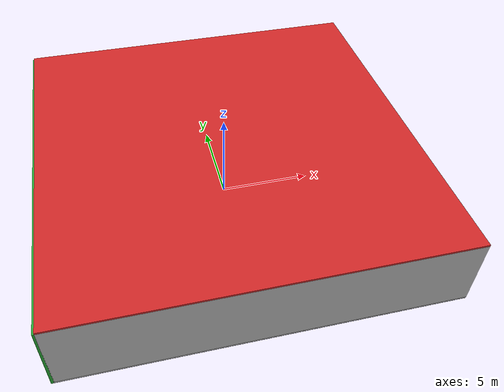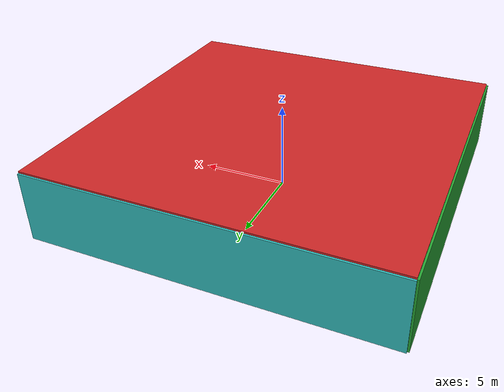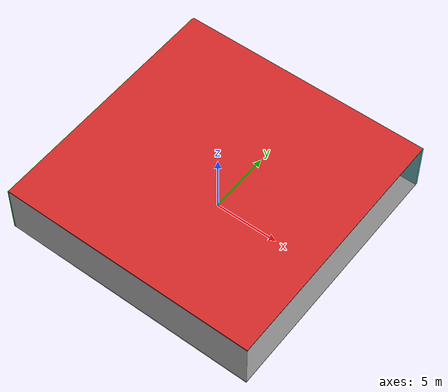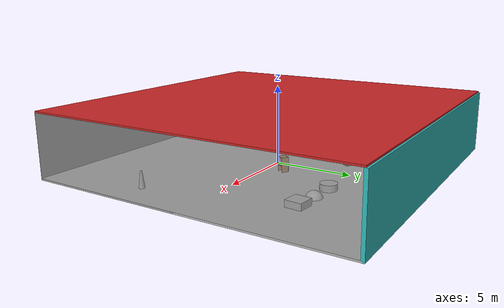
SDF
<sdf version="1.4">
 <world name="default">
  <physics type="ode">
   <max_step_size>0.001</max_step_size>
   <real_time_factor>1</real_time_factor>
   <real_time_update_rate>1000</real_time_update_rate>
   <gravity>0 0 -9.8</gravity>
  </physics>
  <scene><ambient>0.4 0.4 0.4 1</ambient><background>0.7 0.7 0.7 1</background><shadows>1</shadows></scene>
  <model name="Surrounding">
   <static>1</static>
   <link name="Ceiling">
    <collision name="Ceiling_Collision"><geometry><box><size>20 20 0.1</size></box></geometry></collision>
    <visual name="Ceiling_Visual">
     <geometry><box><size>20 20 0.1</size></box></geometry>
     <material>
      <script><uri>file://media/materials/scripts/gazebo.material</uri><name>Gazebo/RedBright</name></script>
     </material>
    </visual>
    <pose>0 0 4.05 0 0 0</pose>
   </link>
   <link name="Wall_South">
    <collision name="Wall_South_Collision">
     <geometry><box><size>20 0 4</size></box></geometry>
     <pose>0 0 2 0 -0 0</pose>
    </collision>
    <visual name="Wall_South_Visual">
     <pose>0 0 2 0 -0 0</pose>
     <geometry><box><size>20 0 4</size></box></geometry>
     <material>
      <script><uri>file://media/materials/scripts/gazebo.material</uri><name>Gazebo/Pioneer2Body</name></script>
     </material>
    </visual>
    <velocity_decay><linear>0</linear><angular>0</angular></velocity_decay>
    <pose>0 -10 0 0 -0 0</pose>
   </link>
   <link name="Wall_East">
    <collision name="Wall_21_Collision">
     <geometry><box><size>20 0 4</size></box></geometry>
     <pose>0 0 2 0 -0 0</pose>
    </collision>
    <visual name="Wall_21_Visual">
     <pose>0 0 2 0 -0 0</pose>
     <geometry><box><size>20 0 4</size></box></geometry>
     <material>
      <script><uri>file://media/materials/scripts/gazebo.material</uri><name>Gazebo/GreyTransparent</name></script>
     </material>
    </visual>
    <velocity_decay><linear>0</linear><angular>0</angular></velocity_decay>
    <pose>10 0 0 0 -0 1.5708</pose>
   </link>
   <link name="Wall_North">
    <collision name="Wall_22_Collision">
     <geometry><box><size>20 0.2 4</size></box></geometry>
     <pose>0 0 2 0 -0 0</pose>
    </collision>
    <visual name="Wall_22_Visual">
     <pose>0 0 2 0 -0 0</pose>
     <geometry><box><size>20 0.2 4</size></box></geometry>
     <material>
      <script><uri>file://media/materials/scripts/gazebo.material</uri><name>Gazebo/Turquoise</name></script>
     </material>
    </visual>
    <velocity_decay><linear>0</linear><angular>0</angular></velocity_decay>
    <pose>0 10 0 0 -0 0</pose>
   </link>
   <link name="Wall_West">
    <collision name="Wall_23_Collision">
     <geometry><box><size>20 0.2 4</size></box></geometry>
     <pose>0 0 2 0 -0 0</pose>
    </collision>
    <visual name="Wall_23_Visual">
     <pose>0 0 2 0 -0 0</pose>
     <geometry><box><size>20 0.2 4</size></box></geometry>
     <material>
      <script><uri>file://media/materials/scripts/gazebo.material</uri><name>Gazebo/GreenGlow</name></script>
     </material>
    </visual>
    <velocity_decay><linear>0</linear><angular>0</angular></velocity_decay>
    <pose>-10 0 0 0 0 -1.5708</pose>
   </link>
   <link name="Ground_link">
    <collision name="collision">
     <pose>0 0 .05 0 -0 0</pose>
     <geometry><box><size>20 20 0.1</size></box></geometry>
    </collision>
    <visual name="visual">
     <pose>0 0 .05 0 -0 0</pose>
     <geometry><box><size>20 20 0.1</size></box></geometry>
     <material>
      <script><uri>file://media/materials/scripts/gazebo.material</uri><name>Gazebo/PioneerBody</name></script>
     </material>
    </visual>
   </link>
   <static>1</static>
  </model>
  <spherical_coordinates>
   <surface_model>EARTH_WGS84</surface_model>
   <latitude_deg>0</latitude_deg>
   <longitude_deg>0</longitude_deg>
   <elevation>0</elevation>
   <heading_deg>0</heading_deg>
  </spherical_coordinates>
  <light name="lightball_0" type="diffuse">
   <diffuse>0.8 0.8 0.8 1</diffuse>
   <specular>0.2 0.2 0.2 1</specular>
   <attenuation>
    <range>100</range>
    <constant>0.7</constant>
    <linear>0.01</linear>
    <quadratic>0.001</quadratic>
   </attenuation>
   <direction>-0.5 0.1 -0.9</direction>
   <pose>-9.09081198554 2.10433356481 1.97257265001 0 0 0</pose>
  </light>
  <light name="lightball_1" type="diffuse">
   <diffuse>0.8 0.8 0.8 1</diffuse>
   <specular>0.2 0.2 0.2 1</specular>
   <attenuation>
    <range>100</range>
    <constant>0.7</constant>
    <linear>0.01</linear>
    <quadratic>0.001</quadratic>
   </attenuation>
   <direction>-0.5 0.1 -0.9</direction>
   <pose>6.51391578842 4.21852524279 3.79405675092 0 0 0</pose>
  </light>
  <light name="lightball_2" type="diffuse">
   <diffuse>0.8 0.8 0.8 1</diffuse>
   <specular>0.2 0.2 0.2 1</specular>
   <attenuation>
    <range>100</range>
    <constant>0.7</constant>
    <linear>0.01</linear>
    <quadratic>0.001</quadratic>
   </attenuation>
   <direction>-0.5 0.1 -0.9</direction>
   <pose>8.00557733855 5.34960505231 0.918950887155 0 0 0</pose>
  </light>
  <light name="lightball_3" type="diffuse">
   <diffuse>0.8 0.8 0.8 1</diffuse>
   <specular>0.2 0.2 0.2 1</specular>
   <attenuation>
    <range>100</range>
    <constant>0.7</constant>
    <linear>0.01</linear>
    <quadratic>0.001</quadratic>
   </attenuation>
   <direction>-0.5 0.1 -0.9</direction>
   <pose>1.57577348259 5.38142864152 0.66597867011 0 0 0</pose>
  </light>
  <light name="lightball_4" type="diffuse">
   <diffuse>0.8 0.8 0.8 1</diffuse>
   <specular>0.2 0.2 0.2 1</specular>
   <attenuation>
    <range>100</range>
    <constant>0.7</constant>
    <linear>0.01</linear>
    <quadratic>0.001</quadratic>
   </attenuation>
   <direction>-0.5 0.1 -0.9</direction>
   <pose>-6.35379121975 -8.12906288547 2.21015218962 0 0 0</pose>
  </light>
  <light name="lightball_5" type="diffuse">
   <diffuse>0.8 0.8 0.8 1</diffuse>
   <specular>0.2 0.2 0.2 1</specular>
   <attenuation>
    <range>100</range>
    <constant>0.7</constant>
    <linear>0.01</linear>
    <quadratic>0.001</quadratic>
   </attenuation>
   <direction>-0.5 0.1 -0.9</direction>
   <pose>2.11646620824 -6.14294838929 1.82936666213 0 0 0</pose>
  </light>
  <light name="lightball_6" type="diffuse">
   <diffuse>0.8 0.8 0.8 1</diffuse>
   <specular>0.2 0.2 0.2 1</specular>
   <attenuation>
    <range>100</range>
    <constant>0.7</constant>
    <linear>0.01</linear>
    <quadratic>0.001</quadratic>
   </attenuation>
   <direction>-0.5 0.1 -0.9</direction>
   <pose>4.39603384072 -9.3074023837 3.11159043066 0 0 0</pose>
  </light>
  <light name="lightball_7" type="diffuse">
   <diffuse>0.8 0.8 0.8 1</diffuse>
   <specular>0.2 0.2 0.2 1</specular>
   <attenuation>
    <range>100</range>
    <constant>0.7</constant>
    <linear>0.01</linear>
    <quadratic>0.001</quadratic>
   </attenuation>
   <direction>-0.5 0.1 -0.9</direction>
   <pose>9.72879307896 -1.41537112417 3.59479936216 0 0 0</pose>
  </light>
  <light name="lightball_8" type="diffuse">
   <diffuse>0.8 0.8 0.8 1</diffuse>
   <specular>0.2 0.2 0.2 1</specular>
   <attenuation>
    <range>100</range>
    <constant>0.7</constant>
    <linear>0.01</linear>
    <quadratic>0.001</quadratic>
   </attenuation>
   <direction>-0.5 0.1 -0.9</direction>
   <pose>1.90480759182 6.39134210389 3.16925048692 0 0 0</pose>
  </light>
  <light name="lightball_9" type="diffuse">
   <diffuse>0.8 0.8 0.8 1</diffuse>
   <specular>0.2 0.2 0.2 1</specular>
   <attenuation>
    <range>100</range>
    <constant>0.7</constant>
    <linear>0.01</linear>
    <quadratic>0.001</quadratic>
   </attenuation>
   <direction>-0.5 0.1 -0.9</direction>
   <pose>-4.19299667016 5.85524863701 1.54429085279 0 0 0</pose>
  </light>
  <light name="lightball_10" type="diffuse">
   <diffuse>0.8 0.8 0.8 1</diffuse>
   <specular>0.2 0.2 0.2 1</specular>
   <attenuation>
    <range>100</range>
    <constant>0.7</constant>
    <linear>0.01</linear>
    <quadratic>0.001</quadratic>
   </attenuation>
   <direction>-0.5 0.1 -0.9</direction>
   <pose>0.414727250282 4.42285308922 2.41679349253 0 0 0</pose>
  </light>
  <light name="lightball_11" type="diffuse">
   <diffuse>0.8 0.8 0.8 1</diffuse>
   <specular>0.2 0.2 0.2 1</specular>
   <attenuation>
    <range>100</range>
    <constant>0.7</constant>
    <linear>0.01</linear>
    <quadratic>0.001</quadratic>
   </attenuation>
   <direction>-0.5 0.1 -0.9</direction>
   <pose>-0.89664612027 1.1375265855 1.95817671485 0 0 0</pose>
  </light>
  <include>
   <uri>model://construction_cone</uri>
   <pose>-8.27893098943 -3.93668591589 0 0 0 0.591173599959</pose>
  </include>
  <include>
   <uri>model://textured_shapes</uri>
   <pose>-7.84508130016 7.26689473738 0 0 0 0.460082568121</pose>
  </include>
  <include>
   <uri>model://textured_shapes</uri>
   <pose>-5.21917401291 0.987366051963 0 0 0 2.77062269049</pose>
  </include>
  <include><uri>model://table</uri><pose>-3.98003874358 4.35631302638 0 0 0 0.578103272129</pose></include>
  <include><uri>model://cabinet</uri><pose>-1.69755319492 4.14533482492 0 0 0 0.972374601067</pose></include>
  <include><uri>model://cabinet</uri><pose>-1.45850500364 7.65337797683 0 0 0 2.26155278206</pose></include>
  <include><uri>model://cabinet</uri><pose>1.5484716425 1.32008250444 0 0 0 2.53805427171</pose></include>
  <include>
   <uri>model://textured_shapes</uri>
   <pose>4.63076659993 5.01500623487 0 0 0 1.4928286994</pose>
  </include>
  <include>
   <uri>model://construction_cone</uri>
   <pose>8.17359376526 -3.83055888907 0 0 0 0.82750722406</pose>
  </include>
 </world>
</sdf>

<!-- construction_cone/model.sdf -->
<sdf version="1.5">
  <model name="Construction Cone">
    <link name="link">
      <collision name="collision">
        <geometry>
          <mesh>
            <scale>10 10 10</scale>
            <uri>file://isr-testbed/construction_cone/meshes/construction_cone.dae</uri>
          </mesh>
        </geometry>
      </collision>
      <visual name="visual">
        <geometry>
          <mesh>
            <scale>10 10 10</scale>
            <uri>file://isr-testbed/construction_cone/meshes/construction_cone.dae</uri>
          </mesh>
        </geometry>
      </visual>
    </link>
  </model>
</sdf>

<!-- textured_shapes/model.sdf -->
<sdf version="1.6">
  <model name="textured_shapes">
    <pose>0 0 0.5 0 0 0</pose>
    <link name="box">
      <pose>0 -1.5 0 0 0 0</pose>
      <collision name="collision">
        <geometry>
          <box>
            <size>1 1 1</size>
          </box>
        </geometry>
      </collision>
      <visual name="visual">
        <geometry>
          <box>
            <size>1 1 1</size>
          </box>
        </geometry>
        <material>
          <script>
            <uri>model://../model_source/models/textured_shapes/materials/scripts</uri>
            <uri>model://../model_source/models/textured_shapes/materials/textures</uri>
            <name>TexturedShape/Squares</name>
          </script>
        </material>
      </visual>
    </link>
    <link name="sphere">
      <collision name="collision">
        <geometry>
          <sphere>
            <radius>0.5</radius>
          </sphere>
        </geometry>
      </collision>
      <visual name="visual">
        <geometry>
          <sphere>
            <radius>0.5</radius>
          </sphere>
        </geometry>
        <material>
          <script>
            <uri>model://../model_source/models/textured_shapes/materials/scripts</uri>
            <uri>model://../model_source/models/textured_shapes/materials/textures</uri>
            <name>TexturedShape/Squares</name>
          </script>
        </material>
      </visual>
    </link>
    <link name="cylinder">
      <pose>0 1.5 0 0 0 0</pose>
      <collision name="collision">
        <geometry>
          <cylinder>
            <radius>0.5</radius>
            <length>1</length>
          </cylinder>
        </geometry>
      </collision>
      <visual name="visual">
        <geometry>
          <cylinder>
            <radius>0.5</radius>
            <length>1</length>
          </cylinder>
        </geometry>
        <material>
          <script>
            <uri>model://../model_source/models/textured_shapes/materials/scripts</uri>
            <uri>model://../model_source/models/textured_shapes/materials/textures</uri>
            <name>TexturedShape/Squares</name>
          </script>
        </material>
      </visual>
    </link>
  </model>
</sdf>

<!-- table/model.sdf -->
<sdf version="1.5">
  <model name="table">
    <static>true</static>
    <link name="link">
      <collision name="surface">
        <pose>0 0 1.0 0 0 0</pose>
        <geometry>
          <box>
            <size>1.5 0.8 0.03</size>
          </box>
        </geometry>
        <surface>
          <friction>
            <ode>
              <mu>0.6</mu>
              <mu2>0.6</mu2>
            </ode>
          </friction>
        </surface>
      </collision>
      <visual name="visual1">
        <pose>0 0 1.0 0 0 0</pose>
        <geometry>
          <box>
            <size>1.5 0.8 0.03</size>
          </box>
        </geometry>
        <material>
          <script>
            <uri>model://media/materials/scripts/gazebo.material</uri>
            <name>Gazebo/Wood</name>
          </script>
        </material>
      </visual>
      <collision name="front_left_leg">
        <pose>0.68 0.38 0.5 0 0 0</pose>
        <geometry>
          <cylinder>
            <radius>0.02</radius>
            <length>1.0</length>
          </cylinder>
        </geometry>
      </collision>
      <visual name="front_left_leg">
        <pose>0.68 0.38 0.5 0 0 0</pose>
        <geometry>
          <cylinder>
            <radius>0.02</radius>
            <length>1.0</length>
          </cylinder>
        </geometry>
        <material>
          <script>
            <uri>model://media/materials/scripts/gazebo.material</uri>
            <name>Gazebo/Grey</name>
          </script>
        </material>
      </visual>
      <collision name="front_right_leg">
        <pose>0.68 -0.38 0.5 0 0 0</pose>
        <geometry>
          <cylinder>
            <radius>0.02</radius>
            <length>1.0</length>
          </cylinder>
        </geometry>
      </collision>
      <visual name="front_right_leg">
        <pose>0.68 -0.38 0.5 0 0 0</pose>
        <geometry>
          <cylinder>
            <radius>0.02</radius>
            <length>1.0</length>
          </cylinder>
        </geometry>
        <material>
          <script>
            <uri>model://media/materials/scripts/gazebo.material</uri>
            <name>Gazebo/Grey</name>
          </script>
        </material>
      </visual>
      <collision name="back_right_leg">
        <pose>-0.68 -0.38 0.5 0 0 0</pose>
        <geometry>
          <cylinder>
            <radius>0.02</radius>
            <length>1.0</length>
          </cylinder>
        </geometry>
      </collision>
      <visual name="back_right_leg">
        <pose>-0.68 -0.38 0.5 0 0 0</pose>
        <geometry>
          <cylinder>
            <radius>0.02</radius>
            <length>1.0</length>
          </cylinder>
        </geometry>
        <material>
          <script>
            <uri>model://media/materials/scripts/gazebo.material</uri>
            <name>Gazebo/Grey</name>
          </script>
        </material>
      </visual>
      <collision name="back_left_leg">
        <pose>-0.68 0.38 0.5 0 0 0</pose>
        <geometry>
          <cylinder>
            <radius>0.02</radius>
            <length>1.0</length>
          </cylinder>
        </geometry>
      </collision>
      <visual name="back_left_leg">
        <pose>-0.68 0.38 0.5 0 0 0</pose>
        <geometry>
          <cylinder>
            <radius>0.02</radius>
            <length>1.0</length>
          </cylinder>
        </geometry>
        <material>
          <script>
            <uri>model://media/materials/scripts/gazebo.material</uri>
            <name>Gazebo/Grey</name>
          </script>
        </material>
      </visual>
    </link>
  </model>
</sdf>

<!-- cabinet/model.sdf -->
<sdf version="1.5">
  <model name="cabinet">
    <static>true</static>
    <link name="cabinet_bottom_plate">
      <inertial>
        <pose>0 0 -1 0 0 0</pose>
        <inertia>
          <ixx>2.050000</ixx>
          <ixy>0</ixy>
          <ixz>0</ixz>
          <iyy>2.050000</iyy>
          <iyz>0</iyz>
          <izz>2.050000</izz>
        </inertia>
        <mass>25.000000</mass>
      </inertial>
      <collision name="cabinet_bottom_plate_geom">
        <pose>0 0 0.010000 0 0 0</pose>
        <geometry>
          <box>
            <size>0.450000 0.450000 0.020000</size>
          </box>
        </geometry>
      </collision>
      <visual name="cabinet_bottom_plate_geom_visual">
        <pose>0 0 0.010000 0 0 0</pose>
        <geometry>
          <box>
            <size>0.450000 0.450000 0.020000</size>
          </box>
        </geometry>
        <material>
          <script>
            <uri>model://media/materials/scripts/gazebo.material</uri>
            <name>Gazebo/Wood</name>
          </script>
        </material>
      </visual>
      <collision name="cabinet_bottom_plate_geom_cabinet_back_plate">
        <pose>0.235000 0 0.510000 0 0 0</pose>
        <geometry>
          <box>
            <size>0.020000 0.450000 1.020000</size>
          </box>
        </geometry>
      </collision>
      <visual name="cabinet_bottom_plate_geom_cabinet_back_plate_visual">
        <pose>0.235000 0 0.510000 0 0 0</pose>
        <geometry>
          <box>
            <size>0.020000 0.450000 1.020000</size>
          </box>
        </geometry>
        <material>
          <script>
            <uri>model://media/materials/scripts/gazebo.material</uri>
            <name>Gazebo/Wood</name>
          </script>
        </material>
      </visual>
      <collision name="cabinet_bottom_plate_geom_cabinet_left_plate">
        <pose>0 0.235000 0.510000 0 0 0</pose>
        <geometry>
          <box>
            <size>0.450000 0.020000 1.020000</size>
          </box>
        </geometry>
      </collision>
      <visual name="cabinet_bottom_plate_geom_cabinet_left_plate_visual">
        <pose>0 0.235000 0.510000 0 0 0</pose>
        <geometry>
          <box>
            <size>0.450000 0.020000 1.020000</size>
          </box>
        </geometry>
        <material>
          <script>
            <uri>model://media/materials/scripts/gazebo.material</uri>
            <name>Gazebo/Wood</name>
          </script>
        </material>
      </visual>
      <collision name="cabinet_bottom_plate_geom_cabinet_middle_plate">
        <pose>0 0 0.510000 0 0 0</pose>
        <geometry>
          <box>
            <size>0.450000 0.450000 0.020000</size>
          </box>
        </geometry>
      </collision>
      <visual name="cabinet_bottom_plate_geom_cabinet_middle_plate_visual">
        <pose>0 0 0.510000 0 0 0</pose>
        <geometry>
          <box>
            <size>0.450000 0.450000 0.020000</size>
          </box>
        </geometry>
        <material>
          <script>
            <uri>model://media/materials/scripts/gazebo.material</uri>
            <name>Gazebo/Wood</name>
          </script>
        </material>
      </visual>
      <collision name="cabinet_bottom_plate_geom_cabinet_right_plate">
        <pose>0 -0.235000 0.510000 0 0 0</pose>
        <geometry>
          <box>
            <size>0.450000 0.020000 1.020000</size>
          </box>
        </geometry>
      </collision>
      <visual name="cabinet_bottom_plate_geom_cabinet_right_plate_visual">
        <pose>0 -0.235000 0.510000 0 0 0</pose>
        <geometry>
          <box>
            <size>0.450000 0.020000 1.020000</size>
          </box>
        </geometry>
        <material>
          <script>
            <uri>model://media/materials/scripts/gazebo.material</uri>
            <name>Gazebo/Wood</name>
          </script>
        </material>
      </visual>
      <collision name="cabinet_bottom_plate_geom_cabinet_top_plate">
        <pose>0 0 1.010000 0 0 0</pose>
        <geometry>
          <box>
            <size>0.450000 0.450000 0.020000</size>
          </box>
        </geometry>
      </collision>
      <visual name="cabinet_bottom_plate_geom_cabinet_top_plate_visual">
        <pose>0 0 1.010000 0 0 0</pose>
        <geometry>
          <box>
            <size>0.450000 0.450000 0.020000</size>
          </box>
        </geometry>
        <material>
          <script>
            <uri>model://media/materials/scripts/gazebo.material</uri>
            <name>Gazebo/Wood</name>
          </script>
        </material>
      </visual>
    </link>
  </model>
</sdf>
